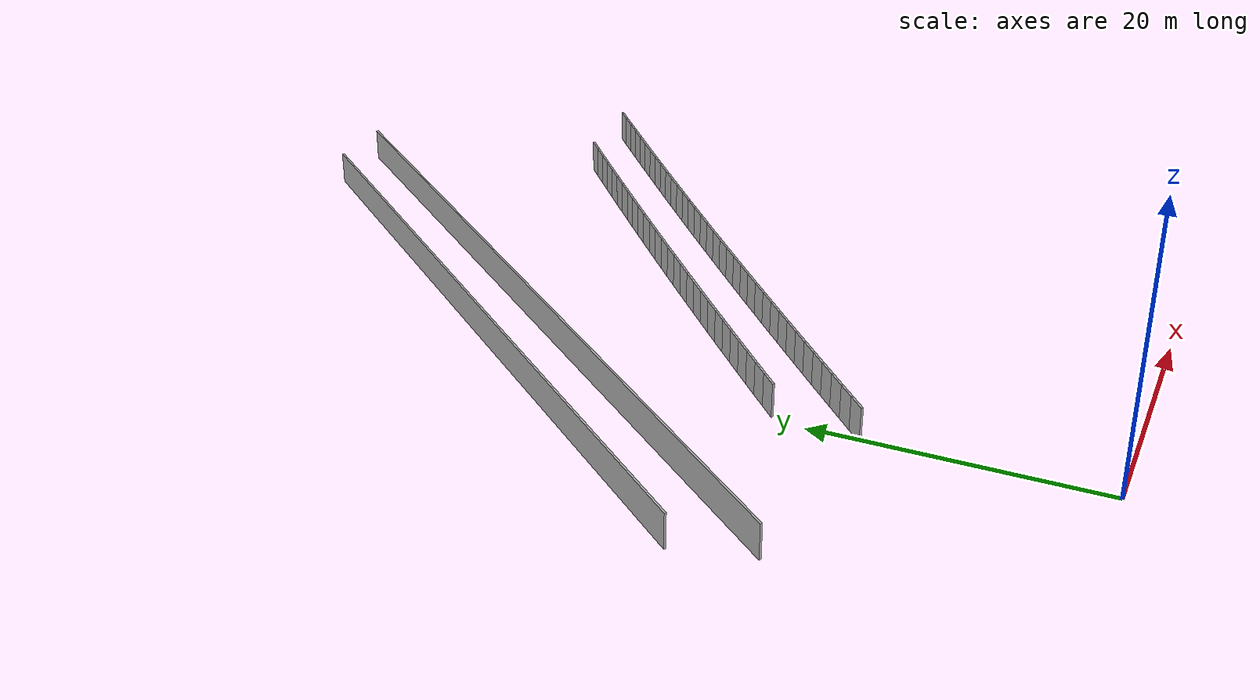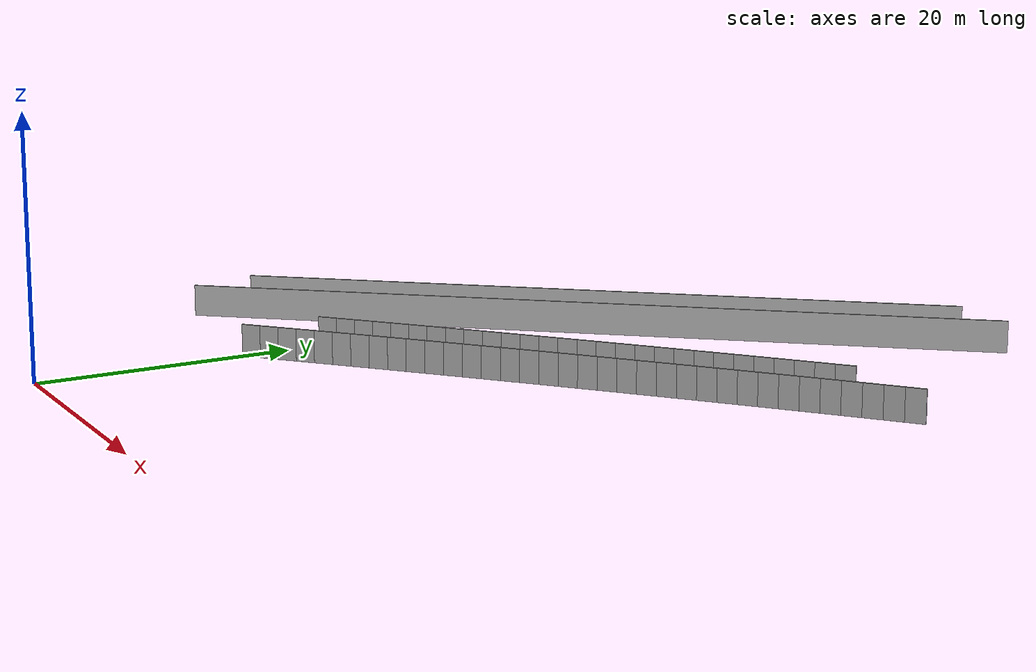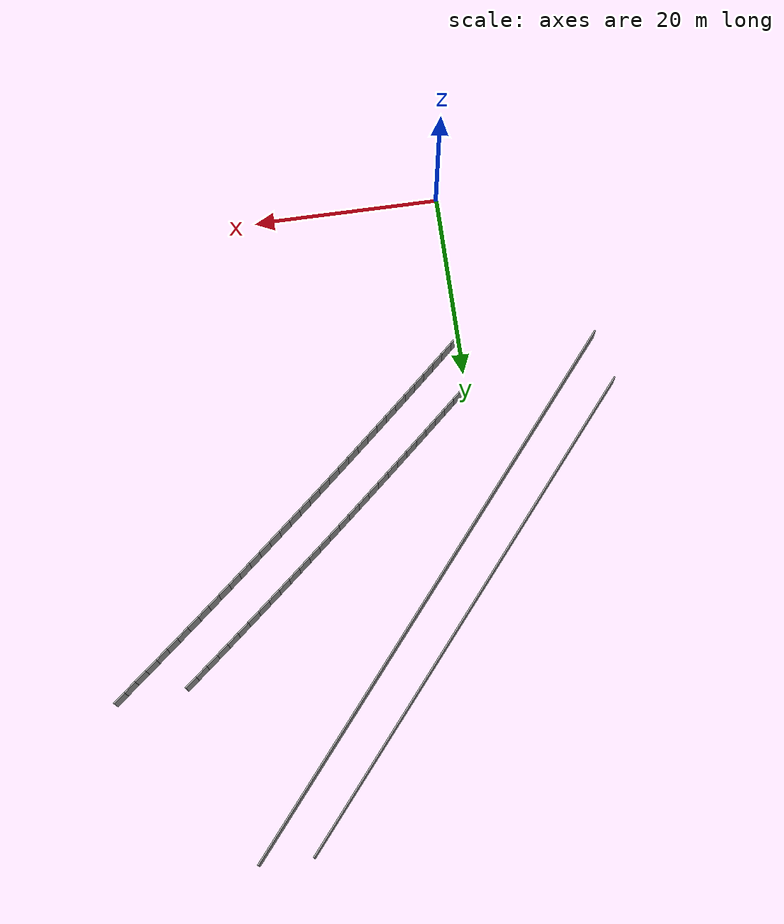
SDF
<?xml version="1.0" ?>
<sdf version="1.6">
  <model name="sps_1142">
    <pose frame="">0 0 0 0 -0 0</pose>
    <static>1</static>
    <self_collide>0</self_collide>
    <allow_auto_disable>0</allow_auto_disable>
    <link name="Wall214">
      <kinematic>0</kinematic>
      <gravity>1</gravity>
      <self_collide>0</self_collide>
      <collision name="collision">
        <geometry>
          <box>
            <size>58.2001 0.15 2.5</size>
          </box>
        </geometry>
        <pose frame="">0 0 0 0 -0 0</pose>
      </collision>
      <visual name="visual">
        <geometry>
          <box>
            <size>58.2001 0.15 2.5</size>
          </box>
        </geometry>
        <pose frame="">0 0 0 0 -0 0</pose>
        <cast_shadows>1</cast_shadows>
        <transparency>0.0</transparency>
      </visual>
      <pose frame="">3.13771 45.5702 1.25 0 0 -2.26727</pose>
    </link>
    <link name="Wall220">
      <kinematic>0</kinematic>
      <gravity>1</gravity>
      <self_collide>0</self_collide>
      <collision name="collision">
        <geometry>
          <box>
            <size>65.0612 0.15 2.5</size>
          </box>
        </geometry>
        <pose frame="">0 0 0 0 -0 0</pose>
      </collision>
      <visual name="visual">
        <geometry>
          <box>
            <size>65.0612 0.15 2.5</size>
          </box>
        </geometry>
        <pose frame="">0 0 0 0 -0 0</pose>
        <cast_shadows>1</cast_shadows>
        <transparency>0.0</transparency>
      </visual>
      <pose frame="">6.48745 42.8931 1.25 0 -0 0.876505</pose>
    </link>
    <link name="Wall3292">
      <kinematic>0</kinematic>
      <gravity>1</gravity>
      <self_collide>0</self_collide>
      <collision name="collision">
        <geometry>
          <box>
            <size>1.49638 0.15 2.5</size>
          </box>
        </geometry>
        <pose frame="">0 0 0 0 -0 0</pose>
      </collision>
      <visual name="visual">
        <geometry>
          <box>
            <size>1.49638 0.15 2.5</size>
          </box>
        </geometry>
        <pose frame="">0 0 0 0 -0 0</pose>
        <cast_shadows>1</cast_shadows>
        <transparency>0.0</transparency>
      </visual>
      <pose frame="">39.1702 49.798 1.25 0 0 -2.46253</pose>
    </link>
    <link name="Wall3293">
      <kinematic>0</kinematic>
      <gravity>1</gravity>
      <self_collide>0</self_collide>
      <collision name="collision">
        <geometry>
          <box>
            <size>1.49654 0.15 2.5</size>
          </box>
        </geometry>
        <pose frame="">0 0 0 0 -0 0</pose>
      </collision>
      <visual name="visual">
        <geometry>
          <box>
            <size>1.49654 0.15 2.5</size>
          </box>
        </geometry>
        <pose frame="">0 0 0 0 -0 0</pose>
        <cast_shadows>1</cast_shadows>
        <transparency>0.0</transparency>
      </visual>
      <pose frame="">38.0064 48.8573 1.25 0 0 -2.4611</pose>
    </link>
    <link name="Wall3294">
      <kinematic>0</kinematic>
      <gravity>1</gravity>
      <self_collide>0</self_collide>
      <collision name="collision">
        <geometry>
          <box>
            <size>1.49653 0.15 2.5</size>
          </box>
        </geometry>
        <pose frame="">0 0 0 0 -0 0</pose>
      </collision>
      <visual name="visual">
        <geometry>
          <box>
            <size>1.49653 0.15 2.5</size>
          </box>
        </geometry>
        <pose frame="">0 0 0 0 -0 0</pose>
        <cast_shadows>1</cast_shadows>
        <transparency>0.0</transparency>
      </visual>
      <pose frame="">36.844 47.9147 1.25 0 0 -2.45936</pose>
    </link>
    <link name="Wall3295">
      <kinematic>0</kinematic>
      <gravity>1</gravity>
      <self_collide>0</self_collide>
      <collision name="collision">
        <geometry>
          <box>
            <size>1.49647 0.15 2.5</size>
          </box>
        </geometry>
        <pose frame="">0 0 0 0 -0 0</pose>
      </collision>
      <visual name="visual">
        <geometry>
          <box>
            <size>1.49647 0.15 2.5</size>
          </box>
        </geometry>
        <pose frame="">0 0 0 0 -0 0</pose>
        <cast_shadows>1</cast_shadows>
        <transparency>0.0</transparency>
      </visual>
      <pose frame="">35.6832 46.9702 1.25 0 0 -2.4578</pose>
    </link>
    <link name="Wall3296">
      <kinematic>0</kinematic>
      <gravity>1</gravity>
      <self_collide>0</self_collide>
      <collision name="collision">
        <geometry>
          <box>
            <size>1.49649 0.15 2.5</size>
          </box>
        </geometry>
        <pose frame="">0 0 0 0 -0 0</pose>
      </collision>
      <visual name="visual">
        <geometry>
          <box>
            <size>1.49649 0.15 2.5</size>
          </box>
        </geometry>
        <pose frame="">0 0 0 0 -0 0</pose>
        <cast_shadows>1</cast_shadows>
        <transparency>0.0</transparency>
      </visual>
      <pose frame="">34.5239 46.0239 1.25 0 0 -2.45623</pose>
    </link>
    <link name="Wall3297">
      <kinematic>0</kinematic>
      <gravity>1</gravity>
      <self_collide>0</self_collide>
      <collision name="collision">
        <geometry>
          <box>
            <size>1.49642 0.15 2.5</size>
          </box>
        </geometry>
        <pose frame="">0 0 0 0 -0 0</pose>
      </collision>
      <visual name="visual">
        <geometry>
          <box>
            <size>1.49642 0.15 2.5</size>
          </box>
        </geometry>
        <pose frame="">0 0 0 0 -0 0</pose>
        <cast_shadows>1</cast_shadows>
        <transparency>0.0</transparency>
      </visual>
      <pose frame="">33.3662 45.0758 1.25 0 0 -2.45461</pose>
    </link>
    <link name="Wall3298">
      <kinematic>0</kinematic>
      <gravity>1</gravity>
      <self_collide>0</self_collide>
      <collision name="collision">
        <geometry>
          <box>
            <size>1.49651 0.15 2.5</size>
          </box>
        </geometry>
        <pose frame="">0 0 0 0 -0 0</pose>
      </collision>
      <visual name="visual">
        <geometry>
          <box>
            <size>1.49651 0.15 2.5</size>
          </box>
        </geometry>
        <pose frame="">0 0 0 0 -0 0</pose>
        <cast_shadows>1</cast_shadows>
        <transparency>0.0</transparency>
      </visual>
      <pose frame="">32.2099 44.1259 1.25 0 0 -2.45313</pose>
    </link>
    <link name="Wall3299">
      <kinematic>0</kinematic>
      <gravity>1</gravity>
      <self_collide>0</self_collide>
      <collision name="collision">
        <geometry>
          <box>
            <size>1.49648 0.15 2.5</size>
          </box>
        </geometry>
        <pose frame="">0 0 0 0 -0 0</pose>
      </collision>
      <visual name="visual">
        <geometry>
          <box>
            <size>1.49648 0.15 2.5</size>
          </box>
        </geometry>
        <pose frame="">0 0 0 0 -0 0</pose>
        <cast_shadows>1</cast_shadows>
        <transparency>0.0</transparency>
      </visual>
      <pose frame="">31.055 43.1741 1.25 0 0 -2.45142</pose>
    </link>
    <link name="Wall3300">
      <kinematic>0</kinematic>
      <gravity>1</gravity>
      <self_collide>0</self_collide>
      <collision name="collision">
        <geometry>
          <box>
            <size>1.49656 0.15 2.5</size>
          </box>
        </geometry>
        <pose frame="">0 0 0 0 -0 0</pose>
      </collision>
      <visual name="visual">
        <geometry>
          <box>
            <size>1.49656 0.15 2.5</size>
          </box>
        </geometry>
        <pose frame="">0 0 0 0 -0 0</pose>
        <cast_shadows>1</cast_shadows>
        <transparency>0.0</transparency>
      </visual>
      <pose frame="">29.9018 42.2204 1.25 0 0 -2.44988</pose>
    </link>
    <link name="Wall3301">
      <kinematic>0</kinematic>
      <gravity>1</gravity>
      <self_collide>0</self_collide>
      <collision name="collision">
        <geometry>
          <box>
            <size>1.49653 0.15 2.5</size>
          </box>
        </geometry>
        <pose frame="">0 0 0 0 -0 0</pose>
      </collision>
      <visual name="visual">
        <geometry>
          <box>
            <size>1.49653 0.15 2.5</size>
          </box>
        </geometry>
        <pose frame="">0 0 0 0 -0 0</pose>
        <cast_shadows>1</cast_shadows>
        <transparency>0.0</transparency>
      </visual>
      <pose frame="">28.7499 41.265 1.25 0 0 -2.44844</pose>
    </link>
    <link name="Wall3302">
      <kinematic>0</kinematic>
      <gravity>1</gravity>
      <self_collide>0</self_collide>
      <collision name="collision">
        <geometry>
          <box>
            <size>1.49617 0.15 2.5</size>
          </box>
        </geometry>
        <pose frame="">0 0 0 0 -0 0</pose>
      </collision>
      <visual name="visual">
        <geometry>
          <box>
            <size>1.49617 0.15 2.5</size>
          </box>
        </geometry>
        <pose frame="">0 0 0 0 -0 0</pose>
        <cast_shadows>1</cast_shadows>
        <transparency>0.0</transparency>
      </visual>
      <pose frame="">27.5995 40.3081 1.25 0 0 -2.44707</pose>
    </link>
    <link name="Wall3303">
      <kinematic>0</kinematic>
      <gravity>1</gravity>
      <self_collide>0</self_collide>
      <collision name="collision">
        <geometry>
          <box>
            <size>1.4965 0.15 2.5</size>
          </box>
        </geometry>
        <pose frame="">0 0 0 0 -0 0</pose>
      </collision>
      <visual name="visual">
        <geometry>
          <box>
            <size>1.4965 0.15 2.5</size>
          </box>
        </geometry>
        <pose frame="">0 0 0 0 -0 0</pose>
        <cast_shadows>1</cast_shadows>
        <transparency>0.0</transparency>
      </visual>
      <pose frame="">26.4508 39.3492 1.25 0 0 -2.44496</pose>
    </link>
    <link name="Wall3304">
      <kinematic>0</kinematic>
      <gravity>1</gravity>
      <self_collide>0</self_collide>
      <collision name="collision">
        <geometry>
          <box>
            <size>1.49644 0.15 2.5</size>
          </box>
        </geometry>
        <pose frame="">0 0 0 0 -0 0</pose>
      </collision>
      <visual name="visual">
        <geometry>
          <box>
            <size>1.49644 0.15 2.5</size>
          </box>
        </geometry>
        <pose frame="">0 0 0 0 -0 0</pose>
        <cast_shadows>1</cast_shadows>
        <transparency>0.0</transparency>
      </visual>
      <pose frame="">25.3036 38.3882 1.25 0 0 -2.44355</pose>
    </link>
    <link name="Wall3305">
      <kinematic>0</kinematic>
      <gravity>1</gravity>
      <self_collide>0</self_collide>
      <collision name="collision">
        <geometry>
          <box>
            <size>1.4965 0.15 2.5</size>
          </box>
        </geometry>
        <pose frame="">0 0 0 0 -0 0</pose>
      </collision>
      <visual name="visual">
        <geometry>
          <box>
            <size>1.4965 0.15 2.5</size>
          </box>
        </geometry>
        <pose frame="">0 0 0 0 -0 0</pose>
        <cast_shadows>1</cast_shadows>
        <transparency>0.0</transparency>
      </visual>
      <pose frame="">24.158 37.4255 1.25 0 0 -2.44198</pose>
    </link>
    <link name="Wall3306">
      <kinematic>0</kinematic>
      <gravity>1</gravity>
      <self_collide>0</self_collide>
      <collision name="collision">
        <geometry>
          <box>
            <size>1.49659 0.15 2.5</size>
          </box>
        </geometry>
        <pose frame="">0 0 0 0 -0 0</pose>
      </collision>
      <visual name="visual">
        <geometry>
          <box>
            <size>1.49659 0.15 2.5</size>
          </box>
        </geometry>
        <pose frame="">0 0 0 0 -0 0</pose>
        <cast_shadows>1</cast_shadows>
        <transparency>0.0</transparency>
      </visual>
      <pose frame="">23.0138 36.4609 1.25 0 0 -2.44033</pose>
    </link>
    <link name="Wall3307">
      <kinematic>0</kinematic>
      <gravity>1</gravity>
      <self_collide>0</self_collide>
      <collision name="collision">
        <geometry>
          <box>
            <size>1.49653 0.15 2.5</size>
          </box>
        </geometry>
        <pose frame="">0 0 0 0 -0 0</pose>
      </collision>
      <visual name="visual">
        <geometry>
          <box>
            <size>1.49653 0.15 2.5</size>
          </box>
        </geometry>
        <pose frame="">0 0 0 0 -0 0</pose>
        <cast_shadows>1</cast_shadows>
        <transparency>0.0</transparency>
      </visual>
      <pose frame="">21.8711 35.4945 1.25 0 0 -2.43885</pose>
    </link>
    <link name="Wall3308">
      <kinematic>0</kinematic>
      <gravity>1</gravity>
      <self_collide>0</self_collide>
      <collision name="collision">
        <geometry>
          <box>
            <size>1.49652 0.15 2.5</size>
          </box>
        </geometry>
        <pose frame="">0 0 0 0 -0 0</pose>
      </collision>
      <visual name="visual">
        <geometry>
          <box>
            <size>1.49652 0.15 2.5</size>
          </box>
        </geometry>
        <pose frame="">0 0 0 0 -0 0</pose>
        <cast_shadows>1</cast_shadows>
        <transparency>0.0</transparency>
      </visual>
      <pose frame="">20.7299 34.5264 1.25 0 0 -2.43729</pose>
    </link>
    <link name="Wall3309">
      <kinematic>0</kinematic>
      <gravity>1</gravity>
      <self_collide>0</self_collide>
      <collision name="collision">
        <geometry>
          <box>
            <size>1.49657 0.15 2.5</size>
          </box>
        </geometry>
        <pose frame="">0 0 0 0 -0 0</pose>
      </collision>
      <visual name="visual">
        <geometry>
          <box>
            <size>1.49657 0.15 2.5</size>
          </box>
        </geometry>
        <pose frame="">0 0 0 0 -0 0</pose>
        <cast_shadows>1</cast_shadows>
        <transparency>0.0</transparency>
      </visual>
      <pose frame="">19.5902 33.5564 1.25 0 0 -2.43555</pose>
    </link>
    <link name="Wall3310">
      <kinematic>0</kinematic>
      <gravity>1</gravity>
      <self_collide>0</self_collide>
      <collision name="collision">
        <geometry>
          <box>
            <size>1.49639 0.15 2.5</size>
          </box>
        </geometry>
        <pose frame="">0 0 0 0 -0 0</pose>
      </collision>
      <visual name="visual">
        <geometry>
          <box>
            <size>1.49639 0.15 2.5</size>
          </box>
        </geometry>
        <pose frame="">0 0 0 0 -0 0</pose>
        <cast_shadows>1</cast_shadows>
        <transparency>0.0</transparency>
      </visual>
      <pose frame="">18.4522 32.5846 1.25 0 0 -2.43406</pose>
    </link>
    <link name="Wall3311">
      <kinematic>0</kinematic>
      <gravity>1</gravity>
      <self_collide>0</self_collide>
      <collision name="collision">
        <geometry>
          <box>
            <size>1.49659 0.15 2.5</size>
          </box>
        </geometry>
        <pose frame="">0 0 0 0 -0 0</pose>
      </collision>
      <visual name="visual">
        <geometry>
          <box>
            <size>1.49659 0.15 2.5</size>
          </box>
        </geometry>
        <pose frame="">0 0 0 0 -0 0</pose>
        <cast_shadows>1</cast_shadows>
        <transparency>0.0</transparency>
      </visual>
      <pose frame="">17.3158 31.611 1.25 0 0 -2.4324</pose>
    </link>
    <link name="Wall3312">
      <kinematic>0</kinematic>
      <gravity>1</gravity>
      <self_collide>0</self_collide>
      <collision name="collision">
        <geometry>
          <box>
            <size>1.49646 0.15 2.5</size>
          </box>
        </geometry>
        <pose frame="">0 0 0 0 -0 0</pose>
      </collision>
      <visual name="visual">
        <geometry>
          <box>
            <size>1.49646 0.15 2.5</size>
          </box>
        </geometry>
        <pose frame="">0 0 0 0 -0 0</pose>
        <cast_shadows>1</cast_shadows>
        <transparency>0.0</transparency>
      </visual>
      <pose frame="">16.1808 30.6356 1.25 0 0 -2.43093</pose>
    </link>
    <link name="Wall3313">
      <kinematic>0</kinematic>
      <gravity>1</gravity>
      <self_collide>0</self_collide>
      <collision name="collision">
        <geometry>
          <box>
            <size>1.49642 0.15 2.5</size>
          </box>
        </geometry>
        <pose frame="">0 0 0 0 -0 0</pose>
      </collision>
      <visual name="visual">
        <geometry>
          <box>
            <size>1.49642 0.15 2.5</size>
          </box>
        </geometry>
        <pose frame="">0 0 0 0 -0 0</pose>
        <cast_shadows>1</cast_shadows>
        <transparency>0.0</transparency>
      </visual>
      <pose frame="">15.0474 29.6585 1.25 0 0 -2.42934</pose>
    </link>
    <link name="Wall3314">
      <kinematic>0</kinematic>
      <gravity>1</gravity>
      <self_collide>0</self_collide>
      <collision name="collision">
        <geometry>
          <box>
            <size>1.49651 0.15 2.5</size>
          </box>
        </geometry>
        <pose frame="">0 0 0 0 -0 0</pose>
      </collision>
      <visual name="visual">
        <geometry>
          <box>
            <size>1.49651 0.15 2.5</size>
          </box>
        </geometry>
        <pose frame="">0 0 0 0 -0 0</pose>
        <cast_shadows>1</cast_shadows>
        <transparency>0.0</transparency>
      </visual>
      <pose frame="">13.9155 28.6796 1.25 0 0 -2.42778</pose>
    </link>
    <link name="Wall3315">
      <kinematic>0</kinematic>
      <gravity>1</gravity>
      <self_collide>0</self_collide>
      <collision name="collision">
        <geometry>
          <box>
            <size>1.49649 0.15 2.5</size>
          </box>
        </geometry>
        <pose frame="">0 0 0 0 -0 0</pose>
      </collision>
      <visual name="visual">
        <geometry>
          <box>
            <size>1.49649 0.15 2.5</size>
          </box>
        </geometry>
        <pose frame="">0 0 0 0 -0 0</pose>
        <cast_shadows>1</cast_shadows>
        <transparency>0.0</transparency>
      </visual>
      <pose frame="">12.7852 27.6988 1.25 0 0 -2.42599</pose>
    </link>
    <link name="Wall3316">
      <kinematic>0</kinematic>
      <gravity>1</gravity>
      <self_collide>0</self_collide>
      <collision name="collision">
        <geometry>
          <box>
            <size>1.49652 0.15 2.5</size>
          </box>
        </geometry>
        <pose frame="">0 0 0 0 -0 0</pose>
      </collision>
      <visual name="visual">
        <geometry>
          <box>
            <size>1.49652 0.15 2.5</size>
          </box>
        </geometry>
        <pose frame="">0 0 0 0 -0 0</pose>
        <cast_shadows>1</cast_shadows>
        <transparency>0.0</transparency>
      </visual>
      <pose frame="">11.6565 26.7162 1.25 0 0 -2.4246</pose>
    </link>
    <link name="Wall3317">
      <kinematic>0</kinematic>
      <gravity>1</gravity>
      <self_collide>0</self_collide>
      <collision name="collision">
        <geometry>
          <box>
            <size>1.49648 0.15 2.5</size>
          </box>
        </geometry>
        <pose frame="">0 0 0 0 -0 0</pose>
      </collision>
      <visual name="visual">
        <geometry>
          <box>
            <size>1.49648 0.15 2.5</size>
          </box>
        </geometry>
        <pose frame="">0 0 0 0 -0 0</pose>
        <cast_shadows>1</cast_shadows>
        <transparency>0.0</transparency>
      </visual>
      <pose frame="">10.5292 25.7319 1.25 0 0 -2.42295</pose>
    </link>
    <link name="Wall3318">
      <kinematic>0</kinematic>
      <gravity>1</gravity>
      <self_collide>0</self_collide>
      <collision name="collision">
        <geometry>
          <box>
            <size>1.49659 0.15 2.5</size>
          </box>
        </geometry>
        <pose frame="">0 0 0 0 -0 0</pose>
      </collision>
      <visual name="visual">
        <geometry>
          <box>
            <size>1.49659 0.15 2.5</size>
          </box>
        </geometry>
        <pose frame="">0 0 0 0 -0 0</pose>
        <cast_shadows>1</cast_shadows>
        <transparency>0.0</transparency>
      </visual>
      <pose frame="">9.40353 24.7458 1.25 0 0 -2.42144</pose>
    </link>
    <link name="Wall3319">
      <kinematic>0</kinematic>
      <gravity>1</gravity>
      <self_collide>0</self_collide>
      <collision name="collision">
        <geometry>
          <box>
            <size>1.49639 0.15 2.5</size>
          </box>
        </geometry>
        <pose frame="">0 0 0 0 -0 0</pose>
      </collision>
      <visual name="visual">
        <geometry>
          <box>
            <size>1.49639 0.15 2.5</size>
          </box>
        </geometry>
        <pose frame="">0 0 0 0 -0 0</pose>
        <cast_shadows>1</cast_shadows>
        <transparency>0.0</transparency>
      </visual>
      <pose frame="">8.27944 23.7579 1.25 0 0 -2.41975</pose>
    </link>
    <link name="Wall3320">
      <kinematic>0</kinematic>
      <gravity>1</gravity>
      <self_collide>0</self_collide>
      <collision name="collision">
        <geometry>
          <box>
            <size>1.49659 0.15 2.5</size>
          </box>
        </geometry>
        <pose frame="">0 0 0 0 -0 0</pose>
      </collision>
      <visual name="visual">
        <geometry>
          <box>
            <size>1.49659 0.15 2.5</size>
          </box>
        </geometry>
        <pose frame="">0 0 0 0 -0 0</pose>
        <cast_shadows>1</cast_shadows>
        <transparency>0.0</transparency>
      </visual>
      <pose frame="">7.15694 22.7682 1.25 0 0 -2.41824</pose>
    </link>
    <link name="Wall3321">
      <kinematic>0</kinematic>
      <gravity>1</gravity>
      <self_collide>0</self_collide>
      <collision name="collision">
        <geometry>
          <box>
            <size>1.49641 0.15 2.5</size>
          </box>
        </geometry>
        <pose frame="">0 0 0 0 -0 0</pose>
      </collision>
      <visual name="visual">
        <geometry>
          <box>
            <size>1.49641 0.15 2.5</size>
          </box>
        </geometry>
        <pose frame="">0 0 0 0 -0 0</pose>
        <cast_shadows>1</cast_shadows>
        <transparency>0.0</transparency>
      </visual>
      <pose frame="">6.03594 21.7768 1.25 0 0 -2.41671</pose>
    </link>
    <link name="Wall3322">
      <kinematic>0</kinematic>
      <gravity>1</gravity>
      <self_collide>0</self_collide>
      <collision name="collision">
        <geometry>
          <box>
            <size>1.49656 0.15 2.5</size>
          </box>
        </geometry>
        <pose frame="">0 0 0 0 -0 0</pose>
      </collision>
      <visual name="visual">
        <geometry>
          <box>
            <size>1.49656 0.15 2.5</size>
          </box>
        </geometry>
        <pose frame="">0 0 0 0 -0 0</pose>
        <cast_shadows>1</cast_shadows>
        <transparency>0.0</transparency>
      </visual>
      <pose frame="">4.91656 20.7836 1.25 0 0 -2.415</pose>
    </link>
    <link name="Wall3323">
      <kinematic>0</kinematic>
      <gravity>1</gravity>
      <self_collide>0</self_collide>
      <collision name="collision">
        <geometry>
          <box>
            <size>1.49647 0.15 2.5</size>
          </box>
        </geometry>
        <pose frame="">0 0 0 0 -0 0</pose>
      </collision>
      <visual name="visual">
        <geometry>
          <box>
            <size>1.49647 0.15 2.5</size>
          </box>
        </geometry>
        <pose frame="">0 0 0 0 -0 0</pose>
        <cast_shadows>1</cast_shadows>
        <transparency>0.0</transparency>
      </visual>
      <pose frame="">3.79876 19.7886 1.25 0 0 -2.41347</pose>
    </link>
    <link name="Wall3324">
      <kinematic>0</kinematic>
      <gravity>1</gravity>
      <self_collide>0</self_collide>
      <collision name="collision">
        <geometry>
          <box>
            <size>1.49654 0.15 2.5</size>
          </box>
        </geometry>
        <pose frame="">0 0 0 0 -0 0</pose>
      </collision>
      <visual name="visual">
        <geometry>
          <box>
            <size>1.49654 0.15 2.5</size>
          </box>
        </geometry>
        <pose frame="">0 0 0 0 -0 0</pose>
        <cast_shadows>1</cast_shadows>
        <transparency>0.0</transparency>
      </visual>
      <pose frame="">2.68255 18.7918 1.25 0 0 -2.41182</pose>
    </link>
    <link name="Wall3325">
      <kinematic>0</kinematic>
      <gravity>1</gravity>
      <self_collide>0</self_collide>
      <collision name="collision">
        <geometry>
          <box>
            <size>1.49646 0.15 2.5</size>
          </box>
        </geometry>
        <pose frame="">0 0 0 0 -0 0</pose>
      </collision>
      <visual name="visual">
        <geometry>
          <box>
            <size>1.49646 0.15 2.5</size>
          </box>
        </geometry>
        <pose frame="">0 0 0 0 -0 0</pose>
        <cast_shadows>1</cast_shadows>
        <transparency>0.0</transparency>
      </visual>
      <pose frame="">1.56795 17.7932 1.25 0 0 -2.41024</pose>
    </link>
    <link name="Wall3326">
      <kinematic>0</kinematic>
      <gravity>1</gravity>
      <self_collide>0</self_collide>
      <collision name="collision">
        <geometry>
          <box>
            <size>1.49646 0.15 2.5</size>
          </box>
        </geometry>
        <pose frame="">0 0 0 0 -0 0</pose>
      </collision>
      <visual name="visual">
        <geometry>
          <box>
            <size>1.49646 0.15 2.5</size>
          </box>
        </geometry>
        <pose frame="">0 0 0 0 -0 0</pose>
        <cast_shadows>1</cast_shadows>
        <transparency>0.0</transparency>
      </visual>
      <pose frame="">0.454948 16.7929 1.25 0 0 -2.40871</pose>
    </link>
    <link name="Wall5907">
      <kinematic>0</kinematic>
      <gravity>1</gravity>
      <self_collide>0</self_collide>
      <collision name="collision">
        <geometry>
          <box>
            <size>1.50317 0.15 2.5</size>
          </box>
        </geometry>
        <pose frame="">0 0 0 0 -0 0</pose>
      </collision>
      <visual name="visual">
        <geometry>
          <box>
            <size>1.50317 0.15 2.5</size>
          </box>
        </geometry>
        <pose frame="">0 0 0 0 -0 0</pose>
        <cast_shadows>1</cast_shadows>
        <transparency>0.0</transparency>
      </visual>
      <pose frame="">31.8934 49.2206 1.25 0 0 -2.45625</pose>
    </link>
    <link name="Wall5908">
      <kinematic>0</kinematic>
      <gravity>1</gravity>
      <self_collide>0</self_collide>
      <collision name="collision">
        <geometry>
          <box>
            <size>1.50297 0.15 2.5</size>
          </box>
        </geometry>
        <pose frame="">0 0 0 0 -0 0</pose>
      </collision>
      <visual name="visual">
        <geometry>
          <box>
            <size>1.50297 0.15 2.5</size>
          </box>
        </geometry>
        <pose frame="">0 0 0 0 -0 0</pose>
        <cast_shadows>1</cast_shadows>
        <transparency>0.0</transparency>
      </visual>
      <pose frame="">30.7305 48.2683 1.25 0 0 -2.45462</pose>
    </link>
    <link name="Wall5909">
      <kinematic>0</kinematic>
      <gravity>1</gravity>
      <self_collide>0</self_collide>
      <collision name="collision">
        <geometry>
          <box>
            <size>1.503 0.15 2.5</size>
          </box>
        </geometry>
        <pose frame="">0 0 0 0 -0 0</pose>
      </collision>
      <visual name="visual">
        <geometry>
          <box>
            <size>1.503 0.15 2.5</size>
          </box>
        </geometry>
        <pose frame="">0 0 0 0 -0 0</pose>
        <cast_shadows>1</cast_shadows>
        <transparency>0.0</transparency>
      </visual>
      <pose frame="">29.5691 47.3142 1.25 0 0 -2.45306</pose>
    </link>
    <link name="Wall5910">
      <kinematic>0</kinematic>
      <gravity>1</gravity>
      <self_collide>0</self_collide>
      <collision name="collision">
        <geometry>
          <box>
            <size>1.50316 0.15 2.5</size>
          </box>
        </geometry>
        <pose frame="">0 0 0 0 -0 0</pose>
      </collision>
      <visual name="visual">
        <geometry>
          <box>
            <size>1.50316 0.15 2.5</size>
          </box>
        </geometry>
        <pose frame="">0 0 0 0 -0 0</pose>
        <cast_shadows>1</cast_shadows>
        <transparency>0.0</transparency>
      </visual>
      <pose frame="">28.4093 46.3582 1.25 0 0 -2.45146</pose>
    </link>
    <link name="Wall5911">
      <kinematic>0</kinematic>
      <gravity>1</gravity>
      <self_collide>0</self_collide>
      <collision name="collision">
        <geometry>
          <box>
            <size>1.5031 0.15 2.5</size>
          </box>
        </geometry>
        <pose frame="">0 0 0 0 -0 0</pose>
      </collision>
      <visual name="visual">
        <geometry>
          <box>
            <size>1.5031 0.15 2.5</size>
          </box>
        </geometry>
        <pose frame="">0 0 0 0 -0 0</pose>
        <cast_shadows>1</cast_shadows>
        <transparency>0.0</transparency>
      </visual>
      <pose frame="">27.2509 45.4003 1.25 0 0 -2.44985</pose>
    </link>
    <link name="Wall5912">
      <kinematic>0</kinematic>
      <gravity>1</gravity>
      <self_collide>0</self_collide>
      <collision name="collision">
        <geometry>
          <box>
            <size>1.50305 0.15 2.5</size>
          </box>
        </geometry>
        <pose frame="">0 0 0 0 -0 0</pose>
      </collision>
      <visual name="visual">
        <geometry>
          <box>
            <size>1.50305 0.15 2.5</size>
          </box>
        </geometry>
        <pose frame="">0 0 0 0 -0 0</pose>
        <cast_shadows>1</cast_shadows>
        <transparency>0.0</transparency>
      </visual>
      <pose frame="">26.0941 44.4406 1.25 0 0 -2.44824</pose>
    </link>
    <link name="Wall5913">
      <kinematic>0</kinematic>
      <gravity>1</gravity>
      <self_collide>0</self_collide>
      <collision name="collision">
        <geometry>
          <box>
            <size>1.5031 0.15 2.5</size>
          </box>
        </geometry>
        <pose frame="">0 0 0 0 -0 0</pose>
      </collision>
      <visual name="visual">
        <geometry>
          <box>
            <size>1.5031 0.15 2.5</size>
          </box>
        </geometry>
        <pose frame="">0 0 0 0 -0 0</pose>
        <cast_shadows>1</cast_shadows>
        <transparency>0.0</transparency>
      </visual>
      <pose frame="">24.9388 43.4791 1.25 0 0 -2.44673</pose>
    </link>
    <link name="Wall5914">
      <kinematic>0</kinematic>
      <gravity>1</gravity>
      <self_collide>0</self_collide>
      <collision name="collision">
        <geometry>
          <box>
            <size>1.50302 0.15 2.5</size>
          </box>
        </geometry>
        <pose frame="">0 0 0 0 -0 0</pose>
      </collision>
      <visual name="visual">
        <geometry>
          <box>
            <size>1.50302 0.15 2.5</size>
          </box>
        </geometry>
        <pose frame="">0 0 0 0 -0 0</pose>
        <cast_shadows>1</cast_shadows>
        <transparency>0.0</transparency>
      </visual>
      <pose frame="">23.785 42.5158 1.25 0 0 -2.44515</pose>
    </link>
    <link name="Wall5915">
      <kinematic>0</kinematic>
      <gravity>1</gravity>
      <self_collide>0</self_collide>
      <collision name="collision">
        <geometry>
          <box>
            <size>1.50324 0.15 2.5</size>
          </box>
        </geometry>
        <pose frame="">0 0 0 0 -0 0</pose>
      </collision>
      <visual name="visual">
        <geometry>
          <box>
            <size>1.50324 0.15 2.5</size>
          </box>
        </geometry>
        <pose frame="">0 0 0 0 -0 0</pose>
        <cast_shadows>1</cast_shadows>
        <transparency>0.0</transparency>
      </visual>
      <pose frame="">22.6327 41.5506 1.25 0 0 -2.44353</pose>
    </link>
    <link name="Wall5916">
      <kinematic>0</kinematic>
      <gravity>1</gravity>
      <self_collide>0</self_collide>
      <collision name="collision">
        <geometry>
          <box>
            <size>1.50276 0.15 2.5</size>
          </box>
        </geometry>
        <pose frame="">0 0 0 0 -0 0</pose>
      </collision>
      <visual name="visual">
        <geometry>
          <box>
            <size>1.50276 0.15 2.5</size>
          </box>
        </geometry>
        <pose frame="">0 0 0 0 -0 0</pose>
        <cast_shadows>1</cast_shadows>
        <transparency>0.0</transparency>
      </visual>
      <pose frame="">21.4819 40.5838 1.25 0 0 -2.4422</pose>
    </link>
    <link name="Wall5917">
      <kinematic>0</kinematic>
      <gravity>1</gravity>
      <self_collide>0</self_collide>
      <collision name="collision">
        <geometry>
          <box>
            <size>1.50301 0.15 2.5</size>
          </box>
        </geometry>
        <pose frame="">0 0 0 0 -0 0</pose>
      </collision>
      <visual name="visual">
        <geometry>
          <box>
            <size>1.50301 0.15 2.5</size>
          </box>
        </geometry>
        <pose frame="">0 0 0 0 -0 0</pose>
        <cast_shadows>1</cast_shadows>
        <transparency>0.0</transparency>
      </visual>
      <pose frame="">20.3327 39.6153 1.25 0 0 -2.44043</pose>
    </link>
    <link name="Wall5918">
      <kinematic>0</kinematic>
      <gravity>1</gravity>
      <self_collide>0</self_collide>
      <collision name="collision">
        <geometry>
          <box>
            <size>1.50307 0.15 2.5</size>
          </box>
        </geometry>
        <pose frame="">0 0 0 0 -0 0</pose>
      </collision>
      <visual name="visual">
        <geometry>
          <box>
            <size>1.50307 0.15 2.5</size>
          </box>
        </geometry>
        <pose frame="">0 0 0 0 -0 0</pose>
        <cast_shadows>1</cast_shadows>
        <transparency>0.0</transparency>
      </visual>
      <pose frame="">19.185 38.6448 1.25 0 0 -2.43887</pose>
    </link>
    <link name="Wall5919">
      <kinematic>0</kinematic>
      <gravity>1</gravity>
      <self_collide>0</self_collide>
      <collision name="collision">
        <geometry>
          <box>
            <size>1.50317 0.15 2.5</size>
          </box>
        </geometry>
        <pose frame="">0 0 0 0 -0 0</pose>
      </collision>
      <visual name="visual">
        <geometry>
          <box>
            <size>1.50317 0.15 2.5</size>
          </box>
        </geometry>
        <pose frame="">0 0 0 0 -0 0</pose>
        <cast_shadows>1</cast_shadows>
        <transparency>0.0</transparency>
      </visual>
      <pose frame="">18.0387 37.6724 1.25 0 0 -2.43722</pose>
    </link>
    <link name="Wall5920">
      <kinematic>0</kinematic>
      <gravity>1</gravity>
      <self_collide>0</self_collide>
      <collision name="collision">
        <geometry>
          <box>
            <size>1.50311 0.15 2.5</size>
          </box>
        </geometry>
        <pose frame="">0 0 0 0 -0 0</pose>
      </collision>
      <visual name="visual">
        <geometry>
          <box>
            <size>1.50311 0.15 2.5</size>
          </box>
        </geometry>
        <pose frame="">0 0 0 0 -0 0</pose>
        <cast_shadows>1</cast_shadows>
        <transparency>0.0</transparency>
      </visual>
      <pose frame="">16.8941 36.6981 1.25 0 0 -2.43558</pose>
    </link>
    <link name="Wall5921">
      <kinematic>0</kinematic>
      <gravity>1</gravity>
      <self_collide>0</self_collide>
      <collision name="collision">
        <geometry>
          <box>
            <size>1.503 0.15 2.5</size>
          </box>
        </geometry>
        <pose frame="">0 0 0 0 -0 0</pose>
      </collision>
      <visual name="visual">
        <geometry>
          <box>
            <size>1.503 0.15 2.5</size>
          </box>
        </geometry>
        <pose frame="">0 0 0 0 -0 0</pose>
        <cast_shadows>1</cast_shadows>
        <transparency>0.0</transparency>
      </visual>
      <pose frame="">15.7512 35.722 1.25 0 0 -2.43398</pose>
    </link>
    <link name="Wall5922">
      <kinematic>0</kinematic>
      <gravity>1</gravity>
      <self_collide>0</self_collide>
      <collision name="collision">
        <geometry>
          <box>
            <size>1.50313 0.15 2.5</size>
          </box>
        </geometry>
        <pose frame="">0 0 0 0 -0 0</pose>
      </collision>
      <visual name="visual">
        <geometry>
          <box>
            <size>1.50313 0.15 2.5</size>
          </box>
        </geometry>
        <pose frame="">0 0 0 0 -0 0</pose>
        <cast_shadows>1</cast_shadows>
        <transparency>0.0</transparency>
      </visual>
      <pose frame="">14.6097 34.7441 1.25 0 0 -2.4325</pose>
    </link>
    <link name="Wall5923">
      <kinematic>0</kinematic>
      <gravity>1</gravity>
      <self_collide>0</self_collide>
      <collision name="collision">
        <geometry>
          <box>
            <size>1.50299 0.15 2.5</size>
          </box>
        </geometry>
        <pose frame="">0 0 0 0 -0 0</pose>
      </collision>
      <visual name="visual">
        <geometry>
          <box>
            <size>1.50299 0.15 2.5</size>
          </box>
        </geometry>
        <pose frame="">0 0 0 0 -0 0</pose>
        <cast_shadows>1</cast_shadows>
        <transparency>0.0</transparency>
      </visual>
      <pose frame="">13.4697 33.7644 1.25 0 0 -2.43081</pose>
    </link>
    <link name="Wall5924">
      <kinematic>0</kinematic>
      <gravity>1</gravity>
      <self_collide>0</self_collide>
      <collision name="collision">
        <geometry>
          <box>
            <size>1.50321 0.15 2.5</size>
          </box>
        </geometry>
        <pose frame="">0 0 0 0 -0 0</pose>
      </collision>
      <visual name="visual">
        <geometry>
          <box>
            <size>1.50321 0.15 2.5</size>
          </box>
        </geometry>
        <pose frame="">0 0 0 0 -0 0</pose>
        <cast_shadows>1</cast_shadows>
        <transparency>0.0</transparency>
      </visual>
      <pose frame="">12.3314 32.7829 1.25 0 0 -2.42933</pose>
    </link>
    <link name="Wall5925">
      <kinematic>0</kinematic>
      <gravity>1</gravity>
      <self_collide>0</self_collide>
      <collision name="collision">
        <geometry>
          <box>
            <size>1.50308 0.15 2.5</size>
          </box>
        </geometry>
        <pose frame="">0 0 0 0 -0 0</pose>
      </collision>
      <visual name="visual">
        <geometry>
          <box>
            <size>1.50308 0.15 2.5</size>
          </box>
        </geometry>
        <pose frame="">0 0 0 0 -0 0</pose>
        <cast_shadows>1</cast_shadows>
        <transparency>0.0</transparency>
      </visual>
      <pose frame="">11.1944 31.7996 1.25 0 0 -2.42769</pose>
    </link>
    <link name="Wall5926">
      <kinematic>0</kinematic>
      <gravity>1</gravity>
      <self_collide>0</self_collide>
      <collision name="collision">
        <geometry>
          <box>
            <size>1.50305 0.15 2.5</size>
          </box>
        </geometry>
        <pose frame="">0 0 0 0 -0 0</pose>
      </collision>
      <visual name="visual">
        <geometry>
          <box>
            <size>1.50305 0.15 2.5</size>
          </box>
        </geometry>
        <pose frame="">0 0 0 0 -0 0</pose>
        <cast_shadows>1</cast_shadows>
        <transparency>0.0</transparency>
      </visual>
      <pose frame="">10.0591 30.8146 1.25 0 0 -2.42623</pose>
    </link>
    <link name="Wall5927">
      <kinematic>0</kinematic>
      <gravity>1</gravity>
      <self_collide>0</self_collide>
      <collision name="collision">
        <geometry>
          <box>
            <size>1.503 0.15 2.5</size>
          </box>
        </geometry>
        <pose frame="">0 0 0 0 -0 0</pose>
      </collision>
      <visual name="visual">
        <geometry>
          <box>
            <size>1.503 0.15 2.5</size>
          </box>
        </geometry>
        <pose frame="">0 0 0 0 -0 0</pose>
        <cast_shadows>1</cast_shadows>
        <transparency>0.0</transparency>
      </visual>
      <pose frame="">8.92544 29.8278 1.25 0 0 -2.42447</pose>
    </link>
    <link name="Wall5928">
      <kinematic>0</kinematic>
      <gravity>1</gravity>
      <self_collide>0</self_collide>
      <collision name="collision">
        <geometry>
          <box>
            <size>1.50306 0.15 2.5</size>
          </box>
        </geometry>
        <pose frame="">0 0 0 0 -0 0</pose>
      </collision>
      <visual name="visual">
        <geometry>
          <box>
            <size>1.50306 0.15 2.5</size>
          </box>
        </geometry>
        <pose frame="">0 0 0 0 -0 0</pose>
        <cast_shadows>1</cast_shadows>
        <transparency>0.0</transparency>
      </visual>
      <pose frame="">7.79336 28.8391 1.25 0 0 -2.42295</pose>
    </link>
    <link name="Wall5929">
      <kinematic>0</kinematic>
      <gravity>1</gravity>
      <self_collide>0</self_collide>
      <collision name="collision">
        <geometry>
          <box>
            <size>1.50312 0.15 2.5</size>
          </box>
        </geometry>
        <pose frame="">0 0 0 0 -0 0</pose>
      </collision>
      <visual name="visual">
        <geometry>
          <box>
            <size>1.50312 0.15 2.5</size>
          </box>
        </geometry>
        <pose frame="">0 0 0 0 -0 0</pose>
        <cast_shadows>1</cast_shadows>
        <transparency>0.0</transparency>
      </visual>
      <pose frame="">6.66277 27.8486 1.25 0 0 -2.42136</pose>
    </link>
    <link name="Wall5930">
      <kinematic>0</kinematic>
      <gravity>1</gravity>
      <self_collide>0</self_collide>
      <collision name="collision">
        <geometry>
          <box>
            <size>1.50315 0.15 2.5</size>
          </box>
        </geometry>
        <pose frame="">0 0 0 0 -0 0</pose>
      </collision>
      <visual name="visual">
        <geometry>
          <box>
            <size>1.50315 0.15 2.5</size>
          </box>
        </geometry>
        <pose frame="">0 0 0 0 -0 0</pose>
        <cast_shadows>1</cast_shadows>
        <transparency>0.0</transparency>
      </visual>
      <pose frame="">5.53365 26.8564 1.25 0 0 -2.41992</pose>
    </link>
    <link name="Wall5931">
      <kinematic>0</kinematic>
      <gravity>1</gravity>
      <self_collide>0</self_collide>
      <collision name="collision">
        <geometry>
          <box>
            <size>1.50307 0.15 2.5</size>
          </box>
        </geometry>
        <pose frame="">0 0 0 0 -0 0</pose>
      </collision>
      <visual name="visual">
        <geometry>
          <box>
            <size>1.50307 0.15 2.5</size>
          </box>
        </geometry>
        <pose frame="">0 0 0 0 -0 0</pose>
        <cast_shadows>1</cast_shadows>
        <transparency>0.0</transparency>
      </visual>
      <pose frame="">4.40615 25.8624 1.25 0 0 -2.41814</pose>
    </link>
    <link name="Wall5932">
      <kinematic>0</kinematic>
      <gravity>1</gravity>
      <self_collide>0</self_collide>
      <collision name="collision">
        <geometry>
          <box>
            <size>1.50305 0.15 2.5</size>
          </box>
        </geometry>
        <pose frame="">0 0 0 0 -0 0</pose>
      </collision>
      <visual name="visual">
        <geometry>
          <box>
            <size>1.50305 0.15 2.5</size>
          </box>
        </geometry>
        <pose frame="">0 0 0 0 -0 0</pose>
        <cast_shadows>1</cast_shadows>
        <transparency>0.0</transparency>
      </visual>
      <pose frame="">3.28036 24.8665 1.25 0 0 -2.41656</pose>
    </link>
    <link name="Wall5933">
      <kinematic>0</kinematic>
      <gravity>1</gravity>
      <self_collide>0</self_collide>
      <collision name="collision">
        <geometry>
          <box>
            <size>1.50296 0.15 2.5</size>
          </box>
        </geometry>
        <pose frame="">0 0 0 0 -0 0</pose>
      </collision>
      <visual name="visual">
        <geometry>
          <box>
            <size>1.50296 0.15 2.5</size>
          </box>
        </geometry>
        <pose frame="">0 0 0 0 -0 0</pose>
        <cast_shadows>1</cast_shadows>
        <transparency>0.0</transparency>
      </visual>
      <pose frame="">2.15615 23.8689 1.25 0 0 -2.41504</pose>
    </link>
    <link name="Wall5934">
      <kinematic>0</kinematic>
      <gravity>1</gravity>
      <self_collide>0</self_collide>
      <collision name="collision">
        <geometry>
          <box>
            <size>1.50325 0.15 2.5</size>
          </box>
        </geometry>
        <pose frame="">0 0 0 0 -0 0</pose>
      </collision>
      <visual name="visual">
        <geometry>
          <box>
            <size>1.50325 0.15 2.5</size>
          </box>
        </geometry>
        <pose frame="">0 0 0 0 -0 0</pose>
        <cast_shadows>1</cast_shadows>
        <transparency>0.0</transparency>
      </visual>
      <pose frame="">1.03344 22.8695 1.25 0 0 -2.41342</pose>
    </link>
  </model>
</sdf>
